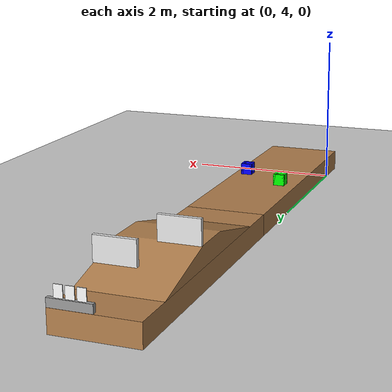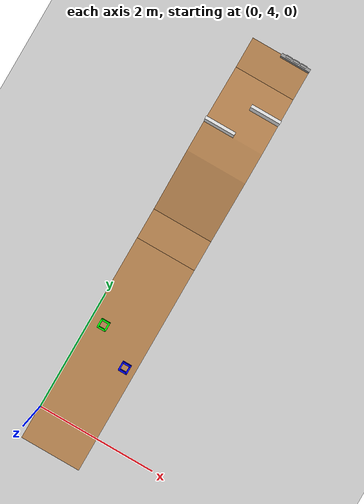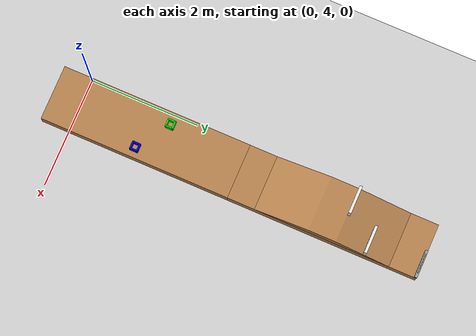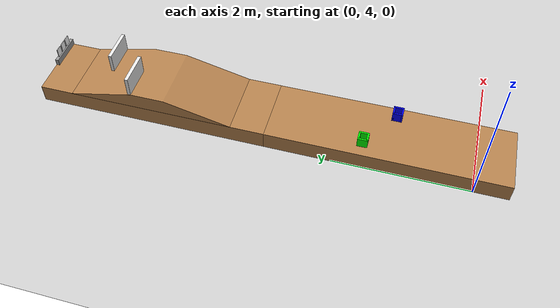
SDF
<sdf version="1.6">
 <world name="default">
  <model name="ground_plane">
   <static>1</static>
   <link name="link">
    <collision name="collision">
     <geometry><plane><normal>0 0 1</normal><size>100 100</size></plane></geometry>
     <surface><friction><ode><mu>100</mu><mu2>50</mu2></ode></friction></surface>
    </collision>
    <visual name="visual">
     <cast_shadows>0</cast_shadows>
     <geometry><plane><normal>0 0 1</normal><size>100 100</size></plane></geometry>
     <material>
      <script><uri>file://media/materials/scripts/gazebo.material</uri><name>Gazebo/Grey</name></script>
     </material>
    </visual>
   </link>
  </model>
  <model name="runway_0">
   <link name="link">
    <inertial>
     <mass>1</mass>
     <inertia>
      <ixx>0.166667</ixx>
      <ixy>0</ixy>
      <ixz>0</ixz>
      <iyy>0.166667</iyy>
      <iyz>0</iyz>
      <izz>0.166667</izz>
     </inertia>
    </inertial>
    <visual name="ModelPreview_1::link::visual_8">
     <geometry><box><size>1.0 3.5 0.535721</size></box></geometry>
     <material>
      <script>
       <uri>model://wood/materials/scripts</uri>
       <uri>model://wood/materials/textures</uri>
       <name>wood</name>
      </script>
      <ambient>0.855 0.765 0.6 1</ambient>
      <diffuse>0.855 0.765 0.6 1</diffuse>
      <specular>1.0 0.95 0.85 1</specular>
      <emissive>0 0 0 1</emissive>
      <shader type="vertex"><normal_map>__default__</normal_map></shader>
     </material>
    </visual>
    <collision name="collision">
     <geometry><box><size>1.0 3.5 0.535721</size></box></geometry>
     <surface><friction><ode><mu>1</mu><mu2>1</mu2></ode></friction></surface>
    </collision>
   </link>
   <static>1</static>
   <pose>0.5 5.25 0 0 -0 0</pose>
  </model>
  <model name="runway_1">
   <link name="link">
    <inertial>
     <mass>1</mass>
     <inertia>
      <ixx>0.166667</ixx>
      <ixy>0</ixy>
      <ixz>0</ixz>
      <iyy>0.166667</iyy>
      <iyz>0</iyz>
      <izz>0.166667</izz>
     </inertia>
    </inertial>
    <visual name="ModelPreview_1::link::visual_8">
     <geometry><box><size>1.0 3.5 0.535721</size></box></geometry>
     <material>
      <script>
       <uri>model://wood/materials/scripts</uri>
       <uri>model://wood/materials/textures</uri>
       <name>wood</name>
      </script>
      <ambient>0.855 0.765 0.6 1</ambient>
      <diffuse>0.855 0.765 0.6 1</diffuse>
      <specular>1.0 0.95 0.85 1</specular>
      <emissive>0 0 0 1</emissive>
      <shader type="vertex"><normal_map>__default__</normal_map></shader>
     </material>
    </visual>
    <visual name="wtf">
     <geometry>
      <mesh>
       <uri>/home/rtu/catkin_ws/src/Project/TELMAP/tel_map/meshes/map/slope.stl</uri>
       <scale>0.001 0.001 0.001</scale>
      </mesh>
     </geometry>
     <material>
      <script>
       <uri>model://wood/materials/scripts</uri>
       <uri>model://wood/materials/textures</uri>
       <name>wood</name>
      </script>
      <ambient>0.855 0.765 0.6 1</ambient>
      <diffuse>0.855 0.765 0.6 1</diffuse>
      <specular>1.0 0.95 0.85 1</specular>
      <emissive>0 0 0 1</emissive>
      <shader type="vertex"><normal_map>__default__</normal_map></shader>
     </material>
     <pose>-0.5 1.25 0.265 1.57 -0 0</pose>
    </visual>
    <collision name="collision_wtf">
     <pose>-0.5 1.25 0.265 1.57 -0 0</pose>
     <geometry>
      <mesh>
       <uri>/home/rtu/catkin_ws/src/Project/TELMAP/tel_map/meshes/map/slope.stl</uri>
       <scale>0.001 0.001 0.001</scale>
      </mesh>
     </geometry>
     <surface>
      <friction>
       <ode><mu>1</mu><mu2>1</mu2><fdir1>0 0 0</fdir1><slip1>0</slip1><slip2>0</slip2></ode>
       <torsional>
        <coefficient>1</coefficient>
        <patch_radius>0</patch_radius>
        <surface_radius>0</surface_radius>
        <use_patch_radius>1</use_patch_radius>
        <ode><slip>0</slip></ode>
       </torsional>
      </friction>
      <bounce><restitution_coefficient>0</restitution_coefficient><threshold>1e+06</threshold></bounce>
      <contact>
       <collide_without_contact>0</collide_without_contact>
       <collide_without_contact_bitmask>1</collide_without_contact_bitmask>
       <collide_bitmask>1</collide_bitmask>
       <ode>
        <soft_cfm>0</soft_cfm>
        <soft_erp>0.2</soft_erp>
        <kp>1e+13</kp>
        <kd>1</kd>
        <max_vel>0.01</max_vel>
        <min_depth>0</min_depth>
       </ode>
       <bullet>
        <split_impulse>1</split_impulse>
        <split_impulse_penetration_threshold>-0.01</split_impulse_penetration_threshold>
        <soft_cfm>0</soft_cfm>
        <soft_erp>0.2</soft_erp>
        <kp>1e+13</kp>
        <kd>1</kd>
       </bullet>
      </contact>
     </surface>
    </collision>
    <collision name="collision">
     <geometry><box><size>1.0 3.5 0.535721</size></box></geometry>
     <surface>
      <friction>
       <ode><mu>1</mu><mu2>1</mu2><fdir1>0 0 0</fdir1><slip1>0</slip1><slip2>0</slip2></ode>
       <torsional>
        <coefficient>1</coefficient>
        <patch_radius>0</patch_radius>
        <surface_radius>0</surface_radius>
        <use_patch_radius>1</use_patch_radius>
        <ode><slip>0</slip></ode>
       </torsional>
      </friction>
      <bounce><restitution_coefficient>0</restitution_coefficient><threshold>1e+06</threshold></bounce>
      <contact>
       <collide_without_contact>0</collide_without_contact>
       <collide_without_contact_bitmask>1</collide_without_contact_bitmask>
       <collide_bitmask>1</collide_bitmask>
       <ode>
        <soft_cfm>0</soft_cfm>
        <soft_erp>0.2</soft_erp>
        <kp>1e+13</kp>
        <kd>1</kd>
        <max_vel>0.01</max_vel>
        <min_depth>0</min_depth>
       </ode>
       <bullet>
        <split_impulse>1</split_impulse>
        <split_impulse_penetration_threshold>-0.01</split_impulse_penetration_threshold>
        <soft_cfm>0</soft_cfm>
        <soft_erp>0.2</soft_erp>
        <kp>1e+13</kp>
        <kd>1</kd>
       </bullet>
      </contact>
     </surface>
    </collision>
   </link>
   <static>1</static>
   <pose>0.500465 8.75 0 0 -0 0</pose>
  </model>
  <model name="shelf">
   <link name="link">
    <inertial>
     <mass>1</mass>
     <inertia>
      <ixx>0.166667</ixx>
      <ixy>0</ixy>
      <ixz>0</ixz>
      <iyy>0.166667</iyy>
      <iyz>0</iyz>
      <izz>0.166667</izz>
     </inertia>
    </inertial>
    <visual name="visual">
     <geometry><box><size>0.50 0.05 0.1</size></box></geometry>
     <material>
      <script><name>Gazebo/Grey</name><uri>file://media/materials/scripts/gazebo.material</uri></script>
      <ambient>0.1 0.1 0.1 1</ambient>
      <diffuse>0.2 0.2 0.2 1</diffuse>
      <specular>0.01 0.01 0.01 1</specular>
      <emissive>0 0 0 1</emissive>
      <shader type="vertex"><normal_map>__default__</normal_map></shader>
     </material>
    </visual>
    <collision name="collision"><geometry><box><size>0.50 0.05 0.1</size></box></geometry></collision>
   </link>
   <static>1</static>
   <pose>0.75 10.475 0.3184 0 -0 0</pose>
  </model>
  <model name="Y">
   <link name="box">
    <inertial>
     <mass>1000</mass>
     <inertia><ixx>1</ixx><ixy>0</ixy><ixz>0</ixz><iyy>1</iyy><iyz>0</iyz><izz>1</izz></inertia>
    </inertial>
    <collision name="collision"><geometry><box><size>0.1 0.01 0.14</size></box></geometry></collision>
    <visual name="visual">
     <geometry><box><size>0.1 0.01 0.14</size></box></geometry>
     <material>
      <script><uri>model://Y/materials/scripts</uri><uri>model://Y/materials/textures</uri><name>Y</name></script>
      <shader type="pixel"><normal_map>__default__</normal_map></shader>
      <ambient>1 1 1 1</ambient>
      <diffuse>1 1 1 1</diffuse>
      <specular>0 0 0 1</specular>
      <emissive>0 0 0 1</emissive>
      <lighting>0</lighting>
     </material>
    </visual>
   </link>
   <static>0</static>
   <pose>0.75 10.475 0.4384 0 -0 0</pose>
  </model>
  <model name="E">
   <link name="box">
    <inertial>
     <mass>1000</mass>
     <inertia><ixx>1</ixx><ixy>0</ixy><ixz>0</ixz><iyy>1</iyy><iyz>0</iyz><izz>1</izz></inertia>
    </inertial>
    <collision name="collision"><geometry><box><size>0.1 0.01 0.14</size></box></geometry></collision>
    <visual name="visual">
     <geometry><box><size>0.1 0.01 0.14</size></box></geometry>
     <material>
      <script><uri>model://E/materials/scripts</uri><uri>model://E/materials/textures</uri><name>E</name></script>
      <shader type="pixel"><normal_map>__default__</normal_map></shader>
      <ambient>1 1 1 1</ambient>
      <diffuse>1 1 1 1</diffuse>
      <specular>0 0 0 1</specular>
      <emissive>0 0 0 1</emissive>
      <lighting>0</lighting>
     </material>
    </visual>
   </link>
   <static>0</static>
   <pose>0.875 10.475 0.4384 0 -0 0</pose>
  </model>
  <model name="S">
   <link name="box">
    <inertial>
     <mass>1000</mass>
     <inertia><ixx>1</ixx><ixy>0</ixy><ixz>0</ixz><iyy>1</iyy><iyz>0</iyz><izz>1</izz></inertia>
    </inertial>
    <collision name="collision"><geometry><box><size>0.1 0.01 0.14</size></box></geometry></collision>
    <visual name="visual">
     <geometry><box><size>0.1 0.01 0.14</size></box></geometry>
     <material>
      <script><uri>model://S/materials/scripts</uri><uri>model://S/materials/textures</uri><name>S</name></script>
      <shader type="pixel"><normal_map>__default__</normal_map></shader>
      <ambient>1 1 1 1</ambient>
      <diffuse>1 1 1 1</diffuse>
      <specular>0 0 0 1</specular>
      <emissive>0 0 0 1</emissive>
      <lighting>0</lighting>
     </material>
    </visual>
   </link>
   <static>0</static>
   <pose>0.625 10.475 0.4384 0 -0 0</pose>
  </model>
  <model name="wall_2">
   <link name="link">
    <inertial>
     <mass>1</mass>
     <inertia>
      <ixx>0.166667</ixx>
      <ixy>0</ixy>
      <ixz>0</ixz>
      <iyy>0.166667</iyy>
      <iyz>0</iyz>
      <izz>0.166667</izz>
     </inertia>
    </inertial>
    <visual name="visual">
     <geometry><box><size>0.50 0.05 0.3</size></box></geometry>
     <material>
      <script>
       <uri>model://wall/materials/scripts</uri>
       <uri>model://wall/materials/textures</uri>
       <name>wall</name>
      </script>
      <ambient>0.9 0.9 0.9 1</ambient>
      <diffuse>0.9 0.9 0.9 1</diffuse>
      <specular>0.5 0.5 0.5 1</specular>
      <emissive>0 0 0 1</emissive>
      <shader type="vertex"><normal_map>__default__</normal_map></shader>
     </material>
    </visual>
    <collision name="collision"><geometry><box><size>0.50 0.05 0.3</size></box></geometry></collision>
   </link>
   <static>1</static>
   <pose>0.75 9.525 0.5434 0 -0 0</pose>
  </model>
  <model name="wall_3">
   <link name="link">
    <inertial>
     <mass>1</mass>
     <inertia>
      <ixx>0.166667</ixx>
      <ixy>0</ixy>
      <ixz>0</ixz>
      <iyy>0.166667</iyy>
      <iyz>0</iyz>
      <izz>0.166667</izz>
     </inertia>
    </inertial>
    <visual name="visual">
     <geometry><box><size>0.50 0.05 0.3</size></box></geometry>
     <material>
      <script>
       <uri>model://wall/materials/scripts</uri>
       <uri>model://wall/materials/textures</uri>
       <name>wall</name>
      </script>
      <ambient>0.9 0.9 0.9 1</ambient>
      <diffuse>0.9 0.9 0.9 1</diffuse>
      <specular>0.5 0.5 0.5 1</specular>
      <emissive>0 0 0 1</emissive>
      <shader type="vertex"><normal_map>__default__</normal_map></shader>
     </material>
    </visual>
    <collision name="collision"><geometry><box><size>0.50 0.05 0.3</size></box></geometry></collision>
   </link>
   <static>1</static>
   <pose>0.25 9.025 0.6684 0 -0 0</pose>
  </model>
  <model name="blue_case">
   <link name="link">
    <collision name="c1">
     <geometry><box><size>0.025 0.15 0.15</size></box></geometry>
     <pose>0.0625 0 0 0 -0 0</pose>
    </collision>
    <collision name="c2">
     <geometry><box><size>0.025 0.15 0.15</size></box></geometry>
     <pose>-0.0625 0 0 0 -0 0</pose>
    </collision>
    <collision name="c3">
     <geometry><box><size>0.15 0.025 0.15</size></box></geometry>
     <pose>0.0 0.0625 0 0 -0 0</pose>
    </collision>
    <collision name="c4">
     <geometry><box><size>0.15 0.025 0.15</size></box></geometry>
     <pose>0.0 -0.0625 0 0 -0 0</pose>
    </collision>
    <visual name="visual1">
     <geometry><box><size>0.025 0.15 0.15</size></box></geometry>
     <material>
      <script><name>Gazebo/Grey</name><uri>file://media/materials/scripts/gazebo.material</uri></script>
      <ambient>0.6 0.6 0.9 1</ambient>
      <diffuse>0 0 1 1</diffuse>
      <specular>0.5 0.5 0.5 1</specular>
      <emissive>0 0 0 1</emissive>
     </material>
     <pose>0.0625 0 0 0 -0 0</pose>
    </visual>
    <visual name="visual2">
     <geometry><box><size>0.025 0.15 0.15</size></box></geometry>
     <material>
      <script><name>Gazebo/Grey</name><uri>file://media/materials/scripts/gazebo.material</uri></script>
      <ambient>0.6 0.6 0.9 1</ambient>
      <diffuse>0 0 1 1</diffuse>
      <specular>0.5 0.5 0.5 1</specular>
      <emissive>0 0 0 1</emissive>
     </material>
     <pose>-0.0625 0 0 0 -0 0</pose>
    </visual>
    <visual name="visual3">
     <geometry><box><size>0.15 0.025 0.15</size></box></geometry>
     <material>
      <script><name>Gazebo/Grey</name><uri>file://media/materials/scripts/gazebo.material</uri></script>
      <ambient>0.6 0.6 0.9 1</ambient>
      <diffuse>0 0 1 1</diffuse>
      <specular>0.5 0.5 0.5 1</specular>
      <emissive>0 0 0 1</emissive>
     </material>
     <pose>0.0 0.0625 0 0 -0 0</pose>
    </visual>
    <visual name="visual4">
     <geometry><box><size>0.15 0.025 0.15</size></box></geometry>
     <material>
      <script><name>Gazebo/Grey</name><uri>file://media/materials/scripts/gazebo.material</uri></script>
      <ambient>0.6 0.6 0.9 1</ambient>
      <diffuse>0 0 1 1</diffuse>
      <specular>0.5 0.5 0.5 1</specular>
      <emissive>0 0 0 1</emissive>
     </material>
     <pose>0.0 -0.0625 0 0 -0 0</pose>
    </visual>
   </link>
   <static>1</static>
   <pose>0.825 5.205 0.345 0 -0 0</pose>
  </model>
  <model name="green_case">
   <link name="link">
    <collision name="c1">
     <geometry><box><size>0.025 0.15 0.15</size></box></geometry>
     <pose>0.0625 0 0 0 -0 0</pose>
    </collision>
    <collision name="c2">
     <geometry><box><size>0.025 0.15 0.15</size></box></geometry>
     <pose>-0.0625 0 0 0 -0 0</pose>
    </collision>
    <collision name="c3">
     <geometry><box><size>0.15 0.025 0.15</size></box></geometry>
     <pose>0.0 0.0625 0 0 -0 0</pose>
    </collision>
    <collision name="c4">
     <geometry><box><size>0.15 0.025 0.15</size></box></geometry>
     <pose>0.0 -0.0625 0 0 -0 0</pose>
    </collision>
    <visual name="visual1">
     <geometry><box><size>0.025 0.15 0.15</size></box></geometry>
     <material>
      <script><name>Gazebo/Grey</name><uri>file://media/materials/scripts/gazebo.material</uri></script>
      <ambient>0.6 0.9 0.6 1</ambient>
      <diffuse>0 1 0 1</diffuse>
      <specular>0.5 0.5 0.5 1</specular>
      <emissive>0 0 0 1</emissive>
     </material>
     <pose>0.0625 0 0 0 -0 0</pose>
    </visual>
    <visual name="visual2">
     <geometry><box><size>0.025 0.15 0.15</size></box></geometry>
     <material>
      <script><name>Gazebo/Grey</name><uri>file://media/materials/scripts/gazebo.material</uri></script>
      <ambient>0.6 0.9 0.6 1</ambient>
      <diffuse>0 1 0 1</diffuse>
      <specular>0.5 0.5 0.5 1</specular>
      <emissive>0 0 0 1</emissive>
     </material>
     <pose>-0.0625 0 0 0 -0 0</pose>
    </visual>
    <visual name="visual3">
     <geometry><box><size>0.15 0.025 0.15</size></box></geometry>
     <material>
      <script><name>Gazebo/Grey</name><uri>file://media/materials/scripts/gazebo.material</uri></script>
      <ambient>0.6 0.9 0.6 1</ambient>
      <diffuse>0 1 0 1</diffuse>
      <specular>0.5 0.5 0.5 1</specular>
      <emissive>0 0 0 1</emissive>
     </material>
     <pose>0.0 0.0625 0 0 -0 0</pose>
    </visual>
    <visual name="visual4">
     <geometry><box><size>0.15 0.025 0.15</size></box></geometry>
     <material>
      <script><name>Gazebo/Grey</name><uri>file://media/materials/scripts/gazebo.material</uri></script>
      <ambient>0.6 0.9 0.6 1</ambient>
      <diffuse>0 1 0 1</diffuse>
      <specular>0.5 0.5 0.5 1</specular>
      <emissive>0 0 0 1</emissive>
     </material>
     <pose>0.0 -0.0625 0 0 -0 0</pose>
    </visual>
   </link>
   <static>1</static>
   <pose>0.225 5.605 0.345 0 -0 0</pose>
  </model>
 </world>
</sdf>
